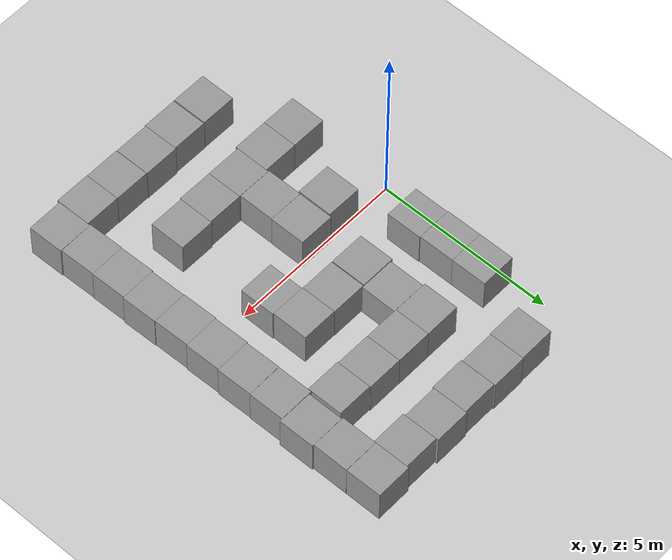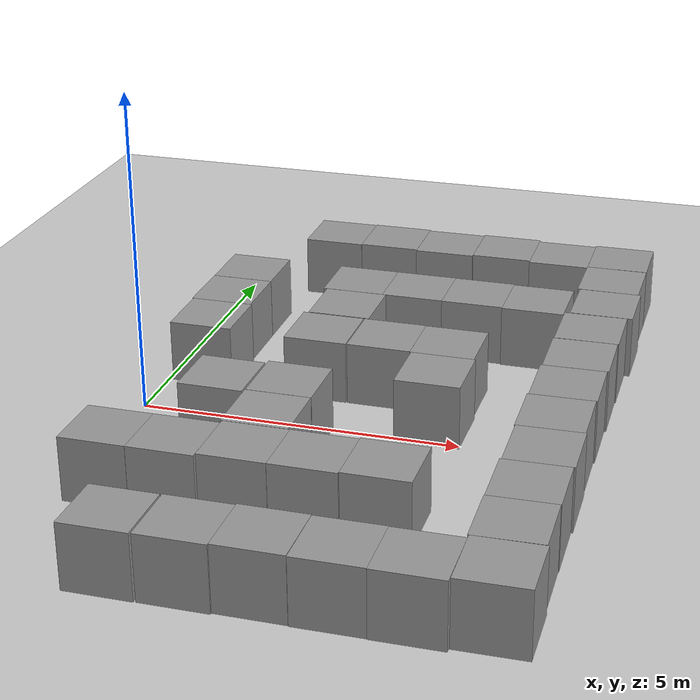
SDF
<sdf version="1.4">
 <world name="default">
  <model name="ground_plane">
   <static>1</static>
   <link name="link">
    <collision name="collision">
     <geometry><plane><normal>0 0 1</normal><size>100 100</size></plane></geometry>
     <surface><friction><ode><mu>100</mu><mu2>50</mu2></ode></friction></surface>
    </collision>
    <visual name="visual">
     <cast_shadows>0</cast_shadows>
     <geometry><plane><normal>0 0 1</normal><size>100 100</size></plane></geometry>
     <material>
      <script><uri>file://media/materials/scripts/gazebo.material</uri><name>Gazebo/Grey</name></script>
     </material>
    </visual>
    <velocity_decay><linear>0</linear><angular>0</angular></velocity_decay>
   </link>
  </model>
  <model name="unit_box_2">
   <pose>6.51469 -1.46162 0.5 0 -0 0.019674</pose>
   <link name="link">
    <inertial>
     <mass>1</mass>
     <inertia><ixx>1</ixx><ixy>0</ixy><ixz>0</ixz><iyy>1</iyy><iyz>0</iyz><izz>1</izz></inertia>
    </inertial>
    <collision name="collision"><geometry><box><size>1 1 1</size></box></geometry></collision>
    <visual name="visual">
     <geometry><box><size>1 1 1</size></box></geometry>
     <material>
      <script><uri>file://media/materials/scripts/gazebo.material</uri><name>Gazebo/Grey</name></script>
     </material>
    </visual>
    <velocity_decay><linear>0</linear><angular>0</angular></velocity_decay>
   </link>
   <static>0</static>
  </model>
  <model name="unit_box_10">
   <pose>0.561743 1.48976 0.5 0 -0 0.002043</pose>
   <link name="link">
    <inertial>
     <mass>1</mass>
     <inertia><ixx>1</ixx><ixy>0</ixy><ixz>0</ixz><iyy>1</iyy><iyz>0</iyz><izz>1</izz></inertia>
    </inertial>
    <collision name="collision"><geometry><box><size>1 1 1</size></box></geometry></collision>
    <visual name="visual">
     <geometry><box><size>1 1 1</size></box></geometry>
     <material>
      <script><uri>file://media/materials/scripts/gazebo.material</uri><name>Gazebo/Grey</name></script>
     </material>
    </visual>
    <velocity_decay><linear>0</linear><angular>0</angular></velocity_decay>
   </link>
   <static>0</static>
  </model>
  <model name="unit_box_11">
   <pose>6.48334 0.538277 0.5 0 -0 0.019621</pose>
   <link name="link">
    <inertial>
     <mass>1</mass>
     <inertia><ixx>1</ixx><ixy>0</ixy><ixz>0</ixz><iyy>1</iyy><iyz>0</iyz><izz>1</izz></inertia>
    </inertial>
    <collision name="collision"><geometry><box><size>1 1 1</size></box></geometry></collision>
    <visual name="visual">
     <geometry><box><size>1 1 1</size></box></geometry>
     <material>
      <script><uri>file://media/materials/scripts/gazebo.material</uri><name>Gazebo/Grey</name></script>
     </material>
    </visual>
    <velocity_decay><linear>0</linear><angular>0</angular></velocity_decay>
   </link>
   <static>0</static>
  </model>
  <model name="unit_box_14">
   <pose>1.52395 -4.56374 0.5 0 -0 -0.001182</pose>
   <link name="link">
    <inertial>
     <mass>1</mass>
     <inertia><ixx>1</ixx><ixy>0</ixy><ixz>0</ixz><iyy>1</iyy><iyz>0</iyz><izz>1</izz></inertia>
    </inertial>
    <collision name="collision"><geometry><box><size>1 1 1</size></box></geometry></collision>
    <visual name="visual">
     <geometry><box><size>1 1 1</size></box></geometry>
     <material>
      <script><uri>file://media/materials/scripts/gazebo.material</uri><name>Gazebo/Grey</name></script>
     </material>
    </visual>
    <velocity_decay><linear>0</linear><angular>0</angular></velocity_decay>
   </link>
   <static>0</static>
  </model>
  <model name="unit_box_20">
   <pose>2.5302 -0.43808 0.5 0 0 -0.002109</pose>
   <link name="link">
    <inertial>
     <mass>1</mass>
     <inertia><ixx>1</ixx><ixy>0</ixy><ixz>0</ixz><iyy>1</iyy><iyz>0</iyz><izz>1</izz></inertia>
    </inertial>
    <collision name="collision"><geometry><box><size>1 1 1</size></box></geometry></collision>
    <visual name="visual">
     <geometry><box><size>1 1 1</size></box></geometry>
     <material>
      <script><uri>file://media/materials/scripts/gazebo.material</uri><name>Gazebo/Grey</name></script>
     </material>
    </visual>
    <velocity_decay><linear>0</linear><angular>0</angular></velocity_decay>
   </link>
   <static>0</static>
  </model>
  <model name="unit_box_21">
   <pose>3.55279 -2.44109 0.5 0 -0 -0.002012</pose>
   <link name="link">
    <inertial>
     <mass>1</mass>
     <inertia><ixx>1</ixx><ixy>0</ixy><ixz>0</ixz><iyy>1</iyy><iyz>0</iyz><izz>1</izz></inertia>
    </inertial>
    <collision name="collision"><geometry><box><size>1 1 1</size></box></geometry></collision>
    <visual name="visual">
     <geometry><box><size>1 1 1</size></box></geometry>
     <material>
      <script><uri>file://media/materials/scripts/gazebo.material</uri><name>Gazebo/Grey</name></script>
     </material>
    </visual>
    <velocity_decay><linear>0</linear><angular>0</angular></velocity_decay>
   </link>
   <static>0</static>
  </model>
  <model name="unit_box_27">
   <pose>0.537805 2.49042 0.5 0 -0 0.00267</pose>
   <link name="link">
    <inertial>
     <mass>1</mass>
     <inertia><ixx>1</ixx><ixy>0</ixy><ixz>0</ixz><iyy>1</iyy><iyz>0</iyz><izz>1</izz></inertia>
    </inertial>
    <collision name="collision"><geometry><box><size>1 1 1</size></box></geometry></collision>
    <visual name="visual">
     <geometry><box><size>1 1 1</size></box></geometry>
     <material>
      <script><uri>file://media/materials/scripts/gazebo.material</uri><name>Gazebo/Grey</name></script>
     </material>
    </visual>
    <velocity_decay><linear>0</linear><angular>0</angular></velocity_decay>
   </link>
   <static>0</static>
  </model>
  <model name="unit_box_34">
   <pose>6.51978 -3.46192 0.5 0 -0 0.019667</pose>
   <link name="link">
    <inertial>
     <mass>1</mass>
     <inertia><ixx>1</ixx><ixy>0</ixy><ixz>0</ixz><iyy>1</iyy><iyz>0</iyz><izz>1</izz></inertia>
    </inertial>
    <collision name="collision"><geometry><box><size>1 1 1</size></box></geometry></collision>
    <visual name="visual">
     <geometry><box><size>1 1 1</size></box></geometry>
     <material>
      <script><uri>file://media/materials/scripts/gazebo.material</uri><name>Gazebo/Grey</name></script>
     </material>
    </visual>
    <velocity_decay><linear>0</linear><angular>0</angular></velocity_decay>
   </link>
   <static>0</static>
  </model>
  <model name="unit_box_36">
   <pose>1.4989 -0.507562 0.5 0 0 -0.006518</pose>
   <link name="link">
    <inertial>
     <mass>1</mass>
     <inertia><ixx>1</ixx><ixy>0</ixy><ixz>0</ixz><iyy>1</iyy><iyz>0</iyz><izz>1</izz></inertia>
    </inertial>
    <collision name="collision"><geometry><box><size>1 1 1</size></box></geometry></collision>
    <visual name="visual">
     <geometry><box><size>1 1 1</size></box></geometry>
     <material>
      <script><uri>file://media/materials/scripts/gazebo.material</uri><name>Gazebo/Grey</name></script>
     </material>
    </visual>
    <velocity_decay><linear>0</linear><angular>0</angular></velocity_decay>
   </link>
   <static>0</static>
  </model>
  <model name="unit_box_37">
   <pose>2.5249 -1.43931 0.5 0 -0 0.000355</pose>
   <link name="link">
    <inertial>
     <mass>1</mass>
     <inertia><ixx>1</ixx><ixy>0</ixy><ixz>0</ixz><iyy>1</iyy><iyz>0</iyz><izz>1</izz></inertia>
    </inertial>
    <collision name="collision"><geometry><box><size>1 1 1</size></box></geometry></collision>
    <visual name="visual">
     <geometry><box><size>1 1 1</size></box></geometry>
     <material>
      <script><uri>file://media/materials/scripts/gazebo.material</uri><name>Gazebo/Grey</name></script>
     </material>
    </visual>
    <velocity_decay><linear>0</linear><angular>0</angular></velocity_decay>
   </link>
   <static>0</static>
  </model>
  <model name="unit_box_39">
   <pose>2.55276 -2.44256 0.5 0 0 -0.002038</pose>
   <link name="link">
    <inertial>
     <mass>1</mass>
     <inertia><ixx>1</ixx><ixy>0</ixy><ixz>0</ixz><iyy>1</iyy><iyz>0</iyz><izz>1</izz></inertia>
    </inertial>
    <collision name="collision"><geometry><box><size>1 1 1</size></box></geometry></collision>
    <visual name="visual">
     <geometry><box><size>1 1 1</size></box></geometry>
     <material>
      <script><uri>file://media/materials/scripts/gazebo.material</uri><name>Gazebo/Grey</name></script>
     </material>
    </visual>
    <velocity_decay><linear>0</linear><angular>0</angular></velocity_decay>
   </link>
   <static>0</static>
  </model>
  <model name="unit_box_43">
   <pose>2.5496 -4.55584 0.5 -0 -0 -0.000372</pose>
   <link name="link">
    <inertial>
     <mass>1</mass>
     <inertia><ixx>1</ixx><ixy>0</ixy><ixz>0</ixz><iyy>1</iyy><iyz>0</iyz><izz>1</izz></inertia>
    </inertial>
    <collision name="collision"><geometry><box><size>1 1 1</size></box></geometry></collision>
    <visual name="visual">
     <geometry><box><size>1 1 1</size></box></geometry>
     <material>
      <script><uri>file://media/materials/scripts/gazebo.material</uri><name>Gazebo/Grey</name></script>
     </material>
    </visual>
    <velocity_decay><linear>0</linear><angular>0</angular></velocity_decay>
   </link>
   <static>0</static>
  </model>
  <model name="unit_box_44">
   <pose>3.5497 -4.52925 0.5 -0 -0 -0.000349</pose>
   <link name="link">
    <inertial>
     <mass>1</mass>
     <inertia><ixx>1</ixx><ixy>0</ixy><ixz>0</ixz><iyy>1</iyy><iyz>0</iyz><izz>1</izz></inertia>
    </inertial>
    <collision name="collision"><geometry><box><size>1 1 1</size></box></geometry></collision>
    <visual name="visual">
     <geometry><box><size>1 1 1</size></box></geometry>
     <material>
      <script><uri>file://media/materials/scripts/gazebo.material</uri><name>Gazebo/Grey</name></script>
     </material>
    </visual>
    <velocity_decay><linear>0</linear><angular>0</angular></velocity_decay>
   </link>
   <static>0</static>
  </model>
  <model name="unit_box_45">
   <pose>4.5543 -4.53871 0.5 0 -0 0.005565</pose>
   <link name="link">
    <inertial>
     <mass>1</mass>
     <inertia><ixx>1</ixx><ixy>0</ixy><ixz>0</ixz><iyy>1</iyy><iyz>0</iyz><izz>1</izz></inertia>
    </inertial>
    <collision name="collision"><geometry><box><size>1 1 1</size></box></geometry></collision>
    <visual name="visual">
     <geometry><box><size>1 1 1</size></box></geometry>
     <material>
      <script><uri>file://media/materials/scripts/gazebo.material</uri><name>Gazebo/Grey</name></script>
     </material>
    </visual>
    <velocity_decay><linear>0</linear><angular>0</angular></velocity_decay>
   </link>
   <static>0</static>
  </model>
  <model name="unit_box_46">
   <pose>5.55435 -4.54172 0.5 0 -0 0.005562</pose>
   <link name="link">
    <inertial>
     <mass>1</mass>
     <inertia><ixx>1</ixx><ixy>0</ixy><ixz>0</ixz><iyy>1</iyy><iyz>0</iyz><izz>1</izz></inertia>
    </inertial>
    <collision name="collision"><geometry><box><size>1 1 1</size></box></geometry></collision>
    <visual name="visual">
     <geometry><box><size>1 1 1</size></box></geometry>
     <material>
      <script><uri>file://media/materials/scripts/gazebo.material</uri><name>Gazebo/Grey</name></script>
     </material>
    </visual>
    <velocity_decay><linear>0</linear><angular>0</angular></velocity_decay>
   </link>
   <static>0</static>
  </model>
  <model name="unit_box_48">
   <pose>3.47412 3.45838 0.5 0 -0 0.001149</pose>
   <link name="link">
    <inertial>
     <mass>1</mass>
     <inertia><ixx>1</ixx><ixy>0</ixy><ixz>0</ixz><iyy>1</iyy><iyz>0</iyz><izz>1</izz></inertia>
    </inertial>
    <collision name="collision"><geometry><box><size>1 1 1</size></box></geometry></collision>
    <visual name="visual">
     <geometry><box><size>1 1 1</size></box></geometry>
     <material>
      <script><uri>file://media/materials/scripts/gazebo.material</uri><name>Gazebo/Grey</name></script>
     </material>
    </visual>
    <velocity_decay><linear>0</linear><angular>0</angular></velocity_decay>
   </link>
   <static>0</static>
  </model>
  <model name="unit_box_54">
   <pose>6.5569 -4.465 0.5 0 -0 0.012431</pose>
   <link name="link">
    <inertial>
     <mass>1</mass>
     <inertia><ixx>1</ixx><ixy>0</ixy><ixz>0</ixz><iyy>1</iyy><iyz>0</iyz><izz>1</izz></inertia>
    </inertial>
    <collision name="collision"><geometry><box><size>1 1 1</size></box></geometry></collision>
    <visual name="visual">
     <geometry><box><size>1 1 1</size></box></geometry>
     <material>
      <script><uri>file://media/materials/scripts/gazebo.material</uri><name>Gazebo/Grey</name></script>
     </material>
    </visual>
    <velocity_decay><linear>0</linear><angular>0</angular></velocity_decay>
   </link>
   <static>0</static>
  </model>
  <model name="unit_box_75">
   <pose>1.5525 -2.50345 0.5 -0 -0 -0.002273</pose>
   <link name="link">
    <inertial>
     <mass>1</mass>
     <inertia><ixx>1</ixx><ixy>0</ixy><ixz>0</ixz><iyy>1</iyy><iyz>0</iyz><izz>1</izz></inertia>
    </inertial>
    <collision name="collision"><geometry><box><size>1 1 1</size></box></geometry></collision>
    <visual name="visual">
     <geometry><box><size>1 1 1</size></box></geometry>
     <material>
      <script><uri>file://media/materials/scripts/gazebo.material</uri><name>Gazebo/Grey</name></script>
     </material>
    </visual>
    <velocity_decay><linear>0</linear><angular>0</angular></velocity_decay>
   </link>
   <static>0</static>
  </model>
  <model name="unit_box_78">
   <pose>1.50898 5.50418 0.5 0 -0 0.005435</pose>
   <link name="link">
    <inertial>
     <mass>1</mass>
     <inertia><ixx>1</ixx><ixy>0</ixy><ixz>0</ixz><iyy>1</iyy><iyz>0</iyz><izz>1</izz></inertia>
    </inertial>
    <collision name="collision"><geometry><box><size>1 1 1</size></box></geometry></collision>
    <visual name="visual">
     <geometry><box><size>1 1 1</size></box></geometry>
     <material>
      <script><uri>file://media/materials/scripts/gazebo.material</uri><name>Gazebo/Grey</name></script>
     </material>
    </visual>
    <velocity_decay><linear>0</linear><angular>0</angular></velocity_decay>
   </link>
   <static>0</static>
  </model>
  <model name="unit_box_79">
   <pose>2.50891 5.52843 0.5 0 -0 0.005516</pose>
   <link name="link">
    <inertial>
     <mass>1</mass>
     <inertia><ixx>1</ixx><ixy>0</ixy><ixz>0</ixz><iyy>1</iyy><iyz>0</iyz><izz>1</izz></inertia>
    </inertial>
    <collision name="collision"><geometry><box><size>1 1 1</size></box></geometry></collision>
    <visual name="visual">
     <geometry><box><size>1 1 1</size></box></geometry>
     <material>
      <script><uri>file://media/materials/scripts/gazebo.material</uri><name>Gazebo/Grey</name></script>
     </material>
    </visual>
    <velocity_decay><linear>0</linear><angular>0</angular></velocity_decay>
   </link>
   <static>0</static>
  </model>
  <model name="unit_box_80">
   <pose>3.50975 5.49931 0.5 0 -0 0.006816</pose>
   <link name="link">
    <inertial>
     <mass>1</mass>
     <inertia><ixx>1</ixx><ixy>0</ixy><ixz>0</ixz><iyy>1</iyy><iyz>0</iyz><izz>1</izz></inertia>
    </inertial>
    <collision name="collision"><geometry><box><size>1 1 1</size></box></geometry></collision>
    <visual name="visual">
     <geometry><box><size>1 1 1</size></box></geometry>
     <material>
      <script><uri>file://media/materials/scripts/gazebo.material</uri><name>Gazebo/Grey</name></script>
     </material>
    </visual>
    <velocity_decay><linear>0</linear><angular>0</angular></velocity_decay>
   </link>
   <static>0</static>
  </model>
  <model name="unit_box_81">
   <pose>4.50946 5.54729 0.5 0 -0 0.00685</pose>
   <link name="link">
    <inertial>
     <mass>1</mass>
     <inertia><ixx>1</ixx><ixy>0</ixy><ixz>0</ixz><iyy>1</iyy><iyz>0</iyz><izz>1</izz></inertia>
    </inertial>
    <collision name="collision"><geometry><box><size>1 1 1</size></box></geometry></collision>
    <visual name="visual">
     <geometry><box><size>1 1 1</size></box></geometry>
     <material>
      <script><uri>file://media/materials/scripts/gazebo.material</uri><name>Gazebo/Grey</name></script>
     </material>
    </visual>
    <velocity_decay><linear>0</linear><angular>0</angular></velocity_decay>
   </link>
   <static>0</static>
  </model>
  <model name="unit_box_82">
   <pose>5.50986 5.49343 0.5 0 -0 0.006846</pose>
   <link name="link">
    <inertial>
     <mass>1</mass>
     <inertia><ixx>1</ixx><ixy>0</ixy><ixz>0</ixz><iyy>1</iyy><iyz>0</iyz><izz>1</izz></inertia>
    </inertial>
    <collision name="collision"><geometry><box><size>1 1 1</size></box></geometry></collision>
    <visual name="visual">
     <geometry><box><size>1 1 1</size></box></geometry>
     <material>
      <script><uri>file://media/materials/scripts/gazebo.material</uri><name>Gazebo/Grey</name></script>
     </material>
    </visual>
    <velocity_decay><linear>0</linear><angular>0</angular></velocity_decay>
   </link>
   <static>0</static>
  </model>
  <model name="unit_box_84">
   <pose>6.48219 -0.462033 0.5 0 -0 0.019724</pose>
   <link name="link">
    <inertial>
     <mass>1</mass>
     <inertia><ixx>1</ixx><ixy>0</ixy><ixz>0</ixz><iyy>1</iyy><iyz>0</iyz><izz>1</izz></inertia>
    </inertial>
    <collision name="collision"><geometry><box><size>1 1 1</size></box></geometry></collision>
    <visual name="visual">
     <geometry><box><size>1 1 1</size></box></geometry>
     <material>
      <script><uri>file://media/materials/scripts/gazebo.material</uri><name>Gazebo/Grey</name></script>
     </material>
    </visual>
    <velocity_decay><linear>0</linear><angular>0</angular></velocity_decay>
   </link>
   <static>0</static>
  </model>
  <model name="unit_box_85">
   <pose>6.49008 1.53873 0.5 0 -0 0.019363</pose>
   <link name="link">
    <inertial>
     <mass>1</mass>
     <inertia><ixx>1</ixx><ixy>0</ixy><ixz>0</ixz><iyy>1</iyy><iyz>0</iyz><izz>1</izz></inertia>
    </inertial>
    <collision name="collision"><geometry><box><size>1 1 1</size></box></geometry></collision>
    <visual name="visual">
     <geometry><box><size>1 1 1</size></box></geometry>
     <material>
      <script><uri>file://media/materials/scripts/gazebo.material</uri><name>Gazebo/Grey</name></script>
     </material>
    </visual>
    <velocity_decay><linear>0</linear><angular>0</angular></velocity_decay>
   </link>
   <static>0</static>
  </model>
  <model name="unit_box_86">
   <pose>6.48737 2.54205 0.5 0 -0 0.012809</pose>
   <link name="link">
    <inertial>
     <mass>1</mass>
     <inertia><ixx>1</ixx><ixy>0</ixy><ixz>0</ixz><iyy>1</iyy><iyz>0</iyz><izz>1</izz></inertia>
    </inertial>
    <collision name="collision"><geometry><box><size>1 1 1</size></box></geometry></collision>
    <visual name="visual">
     <geometry><box><size>1 1 1</size></box></geometry>
     <material>
      <script><uri>file://media/materials/scripts/gazebo.material</uri><name>Gazebo/Grey</name></script>
     </material>
    </visual>
    <velocity_decay><linear>0</linear><angular>0</angular></velocity_decay>
   </link>
   <static>0</static>
  </model>
  <model name="unit_box_87">
   <pose>6.55972 3.54999 0.5 0 -0 0.006298</pose>
   <link name="link">
    <inertial>
     <mass>1</mass>
     <inertia><ixx>1</ixx><ixy>0</ixy><ixz>0</ixz><iyy>1</iyy><iyz>0</iyz><izz>1</izz></inertia>
    </inertial>
    <collision name="collision"><geometry><box><size>1 1 1</size></box></geometry></collision>
    <visual name="visual">
     <geometry><box><size>1 1 1</size></box></geometry>
     <material>
      <script><uri>file://media/materials/scripts/gazebo.material</uri><name>Gazebo/Grey</name></script>
     </material>
    </visual>
    <velocity_decay><linear>0</linear><angular>0</angular></velocity_decay>
   </link>
   <static>0</static>
  </model>
  <model name="unit_box_88">
   <pose>6.51416 4.55189 0.5 0 -0 0.001981</pose>
   <link name="link">
    <inertial>
     <mass>1</mass>
     <inertia><ixx>1</ixx><ixy>0</ixy><ixz>0</ixz><iyy>1</iyy><iyz>0</iyz><izz>1</izz></inertia>
    </inertial>
    <collision name="collision"><geometry><box><size>1 1 1</size></box></geometry></collision>
    <visual name="visual">
     <geometry><box><size>1 1 1</size></box></geometry>
     <material>
      <script><uri>file://media/materials/scripts/gazebo.material</uri><name>Gazebo/Grey</name></script>
     </material>
    </visual>
    <velocity_decay><linear>0</linear><angular>0</angular></velocity_decay>
   </link>
   <static>0</static>
  </model>
  <model name="unit_box_89">
   <pose>6.50967 5.55471 0.5 0 -0 0.007317</pose>
   <link name="link">
    <inertial>
     <mass>1</mass>
     <inertia><ixx>1</ixx><ixy>0</ixy><ixz>0</ixz><iyy>1</iyy><iyz>0</iyz><izz>1</izz></inertia>
    </inertial>
    <collision name="collision"><geometry><box><size>1 1 1</size></box></geometry></collision>
    <visual name="visual">
     <geometry><box><size>1 1 1</size></box></geometry>
     <material>
      <script><uri>file://media/materials/scripts/gazebo.material</uri><name>Gazebo/Grey</name></script>
     </material>
    </visual>
    <velocity_decay><linear>0</linear><angular>0</angular></velocity_decay>
   </link>
   <static>0</static>
  </model>
  <model name="unit_box_90">
   <pose>6.50904 -2.46194 0.5 0 -0 0.019668</pose>
   <link name="link">
    <inertial>
     <mass>1</mass>
     <inertia><ixx>1</ixx><ixy>0</ixy><ixz>0</ixz><iyy>1</iyy><iyz>0</iyz><izz>1</izz></inertia>
    </inertial>
    <collision name="collision"><geometry><box><size>1 1 1</size></box></geometry></collision>
    <visual name="visual">
     <geometry><box><size>1 1 1</size></box></geometry>
     <material>
      <script><uri>file://media/materials/scripts/gazebo.material</uri><name>Gazebo/Grey</name></script>
     </material>
    </visual>
    <velocity_decay><linear>0</linear><angular>0</angular></velocity_decay>
   </link>
   <static>0</static>
  </model>
  <model name="unit_box_93">
   <pose>4.55286 -2.41323 0.5 -0 -0 -0.002022</pose>
   <link name="link">
    <inertial>
     <mass>1</mass>
     <inertia><ixx>1</ixx><ixy>0</ixy><ixz>0</ixz><iyy>1</iyy><iyz>0</iyz><izz>1</izz></inertia>
    </inertial>
    <collision name="collision"><geometry><box><size>1 1 1</size></box></geometry></collision>
    <visual name="visual">
     <geometry><box><size>1 1 1</size></box></geometry>
     <material>
      <script><uri>file://media/materials/scripts/gazebo.material</uri><name>Gazebo/Grey</name></script>
     </material>
    </visual>
    <velocity_decay><linear>0</linear><angular>0</angular></velocity_decay>
   </link>
   <static>0</static>
  </model>
  <model name="unit_box_98">
   <pose>0.552449 -2.50355 0.5 0 0 -0.002278</pose>
   <link name="link">
    <inertial>
     <mass>1</mass>
     <inertia><ixx>1</ixx><ixy>0</ixy><ixz>0</ixz><iyy>1</iyy><iyz>0</iyz><izz>1</izz></inertia>
    </inertial>
    <collision name="collision"><geometry><box><size>1 1 1</size></box></geometry></collision>
    <visual name="visual">
     <geometry><box><size>1 1 1</size></box></geometry>
     <material>
      <script><uri>file://media/materials/scripts/gazebo.material</uri><name>Gazebo/Grey</name></script>
     </material>
    </visual>
    <velocity_decay><linear>0</linear><angular>0</angular></velocity_decay>
   </link>
   <static>0</static>
  </model>
  <model name="unit_box_102">
   <pose>0.534841 3.49107 0.5 0 -0 0.003176</pose>
   <link name="link">
    <inertial>
     <mass>1</mass>
     <inertia><ixx>1</ixx><ixy>0</ixy><ixz>0</ixz><iyy>1</iyy><iyz>0</iyz><izz>1</izz></inertia>
    </inertial>
    <collision name="collision"><geometry><box><size>1 1 1</size></box></geometry></collision>
    <visual name="visual">
     <geometry><box><size>1 1 1</size></box></geometry>
     <material>
      <script><uri>file://media/materials/scripts/gazebo.material</uri><name>Gazebo/Grey</name></script>
     </material>
    </visual>
    <velocity_decay><linear>0</linear><angular>0</angular></velocity_decay>
   </link>
   <static>0</static>
  </model>
  <model name="unit_box_104">
   <pose>2.47409 3.45751 0.5 0 -0 0.001109</pose>
   <link name="link">
    <inertial>
     <mass>1</mass>
     <inertia><ixx>1</ixx><ixy>0</ixy><ixz>0</ixz><iyy>1</iyy><iyz>0</iyz><izz>1</izz></inertia>
    </inertial>
    <collision name="collision"><geometry><box><size>1 1 1</size></box></geometry></collision>
    <visual name="visual">
     <geometry><box><size>1 1 1</size></box></geometry>
     <material>
      <script><uri>file://media/materials/scripts/gazebo.material</uri><name>Gazebo/Grey</name></script>
     </material>
    </visual>
    <velocity_decay><linear>0</linear><angular>0</angular></velocity_decay>
   </link>
   <static>0</static>
  </model>
  <model name="unit_box_105">
   <pose>2.53774 2.45655 0.5 0 -0 0.000229</pose>
   <link name="link">
    <inertial>
     <mass>1</mass>
     <inertia><ixx>1</ixx><ixy>0</ixy><ixz>0</ixz><iyy>1</iyy><iyz>0</iyz><izz>1</izz></inertia>
    </inertial>
    <collision name="collision"><geometry><box><size>1 1 1</size></box></geometry></collision>
    <visual name="visual">
     <geometry><box><size>1 1 1</size></box></geometry>
     <material>
      <script><uri>file://media/materials/scripts/gazebo.material</uri><name>Gazebo/Grey</name></script>
     </material>
    </visual>
    <velocity_decay><linear>0</linear><angular>0</angular></velocity_decay>
   </link>
   <static>0</static>
  </model>
  <model name="unit_box_106">
   <pose>2.46347 1.43893 0.5 0 -0 0</pose>
   <link name="link">
    <inertial>
     <mass>1</mass>
     <inertia><ixx>1</ixx><ixy>0</ixy><ixz>0</ixz><iyy>1</iyy><iyz>0</iyz><izz>1</izz></inertia>
    </inertial>
    <collision name="collision"><geometry><box><size>1 1 1</size></box></geometry></collision>
    <visual name="visual">
     <geometry><box><size>1 1 1</size></box></geometry>
     <material>
      <script><uri>file://media/materials/scripts/gazebo.material</uri><name>Gazebo/Grey</name></script>
     </material>
    </visual>
    <velocity_decay><linear>0</linear><angular>0</angular></velocity_decay>
   </link>
   <static>0</static>
  </model>
  <model name="unit_box_107">
   <pose>3.48173 1.44119 0.5 0 -0 2.2e-05</pose>
   <link name="link">
    <inertial>
     <mass>1</mass>
     <inertia><ixx>1</ixx><ixy>0</ixy><ixz>0</ixz><iyy>1</iyy><iyz>0</iyz><izz>1</izz></inertia>
    </inertial>
    <collision name="collision"><geometry><box><size>1 1 1</size></box></geometry></collision>
    <visual name="visual">
     <geometry><box><size>1 1 1</size></box></geometry>
     <material>
      <script><uri>file://media/materials/scripts/gazebo.material</uri><name>Gazebo/Grey</name></script>
     </material>
    </visual>
    <velocity_decay><linear>0</linear><angular>0</angular></velocity_decay>
   </link>
   <static>0</static>
  </model>
  <model name="unit_box_108">
   <pose>4.48179 1.43301 0.5 0 -0 0.000127</pose>
   <link name="link">
    <inertial>
     <mass>1</mass>
     <inertia><ixx>1</ixx><ixy>0</ixy><ixz>0</ixz><iyy>1</iyy><iyz>0</iyz><izz>1</izz></inertia>
    </inertial>
    <collision name="collision"><geometry><box><size>1 1 1</size></box></geometry></collision>
    <visual name="visual">
     <geometry><box><size>1 1 1</size></box></geometry>
     <material>
      <script><uri>file://media/materials/scripts/gazebo.material</uri><name>Gazebo/Grey</name></script>
     </material>
    </visual>
    <velocity_decay><linear>0</linear><angular>0</angular></velocity_decay>
   </link>
   <static>0</static>
  </model>
  <model name="unit_box_109">
   <pose>4.50719 0.432994 0.5 0 -0 0.000144</pose>
   <link name="link">
    <inertial>
     <mass>1</mass>
     <inertia><ixx>1</ixx><ixy>0</ixy><ixz>0</ixz><iyy>1</iyy><iyz>0</iyz><izz>1</izz></inertia>
    </inertial>
    <collision name="collision"><geometry><box><size>1 1 1</size></box></geometry></collision>
    <visual name="visual">
     <geometry><box><size>1 1 1</size></box></geometry>
     <material>
      <script><uri>file://media/materials/scripts/gazebo.material</uri><name>Gazebo/Grey</name></script>
     </material>
    </visual>
    <velocity_decay><linear>0</linear><angular>0</angular></velocity_decay>
   </link>
   <static>0</static>
  </model>
  <model name="unit_box_110">
   <pose>4.47415 3.45477 0.5 0 -0 0.001189</pose>
   <link name="link">
    <inertial>
     <mass>1</mass>
     <inertia><ixx>1</ixx><ixy>0</ixy><ixz>0</ixz><iyy>1</iyy><iyz>0</iyz><izz>1</izz></inertia>
    </inertial>
    <collision name="collision"><geometry><box><size>1 1 1</size></box></geometry></collision>
    <visual name="visual">
     <geometry><box><size>1 1 1</size></box></geometry>
     <material>
      <script><uri>file://media/materials/scripts/gazebo.material</uri><name>Gazebo/Grey</name></script>
     </material>
    </visual>
    <velocity_decay><linear>0</linear><angular>0</angular></velocity_decay>
   </link>
   <static>0</static>
  </model>
  <model name="unit_box_111">
   <pose>5.47435 3.43259 0.5 0 -0 0.001231</pose>
   <link name="link">
    <inertial>
     <mass>1</mass>
     <inertia><ixx>1</ixx><ixy>0</ixy><ixz>0</ixz><iyy>1</iyy><iyz>0</iyz><izz>1</izz></inertia>
    </inertial>
    <collision name="collision"><geometry><box><size>1 1 1</size></box></geometry></collision>
    <visual name="visual">
     <geometry><box><size>1 1 1</size></box></geometry>
     <material>
      <script><uri>file://media/materials/scripts/gazebo.material</uri><name>Gazebo/Grey</name></script>
     </material>
    </visual>
    <velocity_decay><linear>0</linear><angular>0</angular></velocity_decay>
   </link>
   <static>0</static>
  </model>
 </world>
</sdf>
